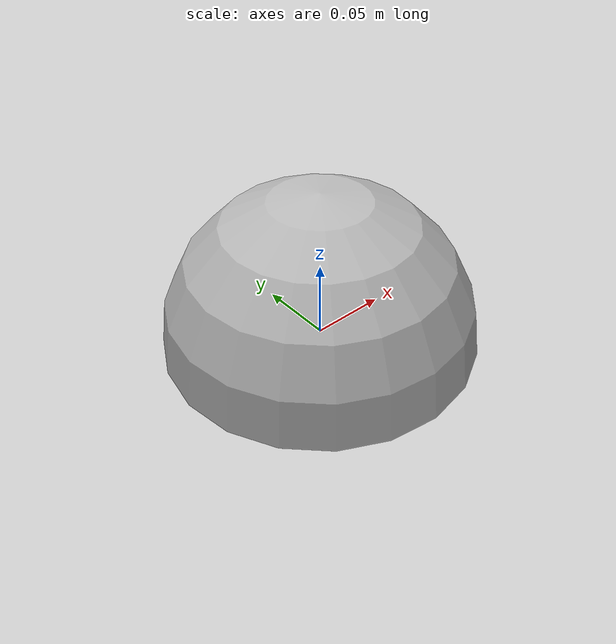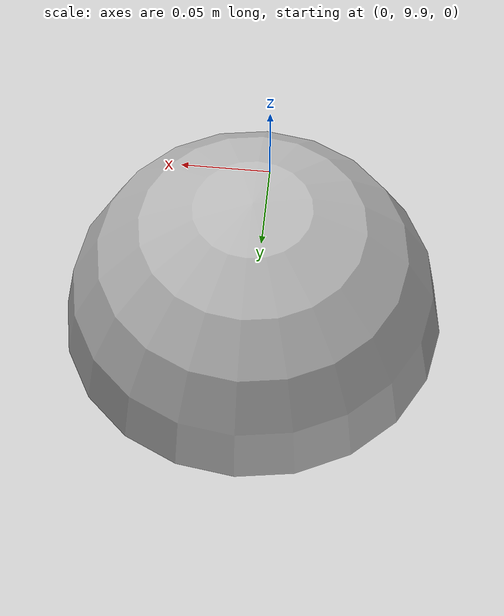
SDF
<?xml version="1.0"?>
<sdf version="1.5">
  <world name="default">
    <!-- A global light source -->
    <include>
      <uri>model://sun</uri>
    </include>
    <!-- A ground plane -->
    <include>
      <uri>model://ground_plane</uri>
    </include>

    <!-- Anchor 0 -->
    <include>
      <name>uwb_anchor_0</name>
      <uri>model://uwb_anchor_main</uri>
      <pose>0 0 0 0 0 0</pose>
    </include>
    <!-- Anchor 1 -->
    <include>
      <name>uwb_anchor_1</name>
      <uri>model://uwb_anchor</uri>
      <pose>10 0 0 0 0 0</pose>
    </include>
    <!-- Anchor 2 -->
    <include>
      <name>uwb_anchor_2</name>
      <uri>model://uwb_anchor</uri>
      <pose>0 10 0 0 0 0</pose>
    </include>
    <!-- Anchor 3 -->
    <include>
      <name>uwb_anchor_3</name>
      <uri>model://uwb_anchor</uri>
      <pose>10 10 10 0 0 0</pose>
    </include>

    <physics name='default_physics' default='0' type='ode'>
      <gravity>0 0 -9.8066</gravity>
      <ode>
        <solver>
          <type>quick</type>
          <iters>10</iters>
          <sor>1.3</sor>
          <use_dynamic_moi_rescaling>0</use_dynamic_moi_rescaling>
        </solver>
        <constraints>
          <cfm>0</cfm>
          <erp>0.2</erp>
          <contact_max_correcting_vel>100</contact_max_correcting_vel>
          <contact_surface_layer>0.001</contact_surface_layer>
        </constraints>
      </ode>
      <max_step_size>0.004</max_step_size>
      <real_time_factor>1</real_time_factor>
      <real_time_update_rate>250</real_time_update_rate>
      <magnetic_field>6.0e-6 2.3e-5 -4.2e-5</magnetic_field>
    </physics>
  </world>
</sdf>

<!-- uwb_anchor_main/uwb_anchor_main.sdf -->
<sdf version='1.6'>
  <model name='uwb_anchor_main'>
    <static>1</static>
    <pose>0 0 0 0 0 0</pose>
    <link name="uwb_anchor_head">
      <visual name='uwb_anchor_head_visual'>
        <pose>0 0 0 0 0 0</pose>
        <geometry>
          <sphere>
            <radius>0.1 0.1 0.1</radius>
          </sphere>
        </geometry>
      </visual>
      <sensor name="anchor_gps" type="gps">
        <always_on>true</always_on>
        <update_rate>1</update_rate>
        <plugin name="anchor_gps_plugin" filename="libgazebo_ros_gps_sensor.so">
          <ros>
            <namespace>/Gps</namespace>
            <remapping>~/out:=data</remapping>
          </ros>
        </plugin>
      </sensor>
    </link>
    <plugin name="gazebo_ros_uwb" filename="libros2_px4_gazebo_uwb.so">
      <link_name>uwb_anchor_head</link_name>
      <update_rate>20</update_rate>
    </plugin>
  </model>
</sdf>

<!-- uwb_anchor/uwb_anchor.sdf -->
<sdf version='1.6'>
  <model name='uwb_anchor'>
    <static>1</static>
    <pose>0 0 0 0 0 0</pose>
    <link name="uwb_anchor_head">
      <visual name='uwb_anchor_head_visual'>
        <pose>0 0 0 0 0 0</pose>
        <geometry>
          <sphere>
            <radius>0.1 0.1 0.1</radius>
          </sphere>
        </geometry>
      </visual>
    </link>
    <plugin name="gazebo_ros_uwb" filename="libros2_px4_gazebo_uwb.so">
      <link_name>uwb_anchor_head</link_name>
      <update_rate>20</update_rate>
      <anchor_offset>0.2</anchor_offset>
    </plugin>
  </model>
</sdf>
